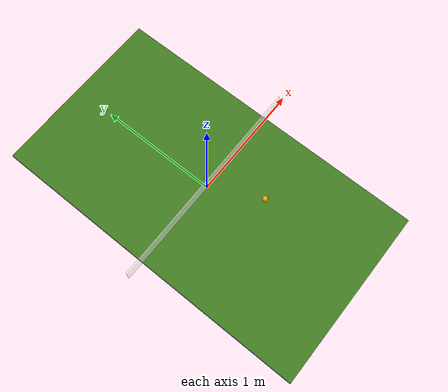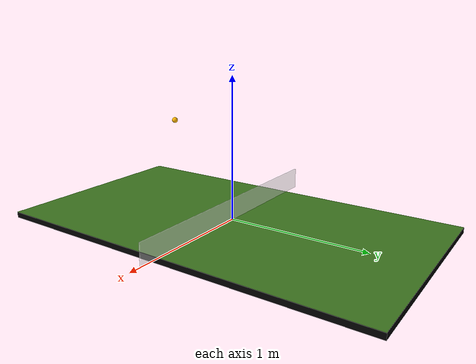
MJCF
<mujoco model="pp_ball_with_table">
  <compiler angle="radian" autolimits="true"/>
  <option density="1.225" viscosity="1.8e-5" wind="0 0 0" integrator="implicitfast" timestep="0.001" cone="elliptic"/>

  <visual>
    <headlight diffuse=".5 .5 .5" specular="1 1 1"/>
  </visual>

  <asset>
    <texture type="skybox" builtin="gradient" rgb1=".5 .5 .5" rgb2="0 0 0" width="10" height="10"/>
    <texture type="2d" name="groundplane" builtin="checker" mark="edge" rgb1="1 1 1" rgb2="1 1 1" markrgb="0 0 0" width="300" height="300"/>
    <material name="groundplane" texture="groundplane" texuniform="true" texrepeat="5 5" reflectance="0.3"/>
  </asset>

  <worldbody>
    <light pos="0 0 3" diffuse="1 1 1" specular="1 1 1"/>

    <body name="ball" pos="0.0 -0.5 0.652">
      <inertial pos="0 0 0" mass="2.7e-3" diaginertia="0.00000072 0.00000072 0.00000072"/>
      <freejoint/>
      <geom name="geom_ball" size=".02" shellinertia="false" fluidcoef="0.235 0.25 0.0 1.0 1.0" group="1" rgba="0.98 0.70 0.015 1" solref="-100000 -0" fluidshape="ellipsoid"/>
    </body>

    <body name="table" pos="0 0 -0.76" quat="0.7071068 0 0 0.7071068">
      <geom name="geom_table" size="1.37 0.7625 0.02" pos="0 0 0.74" type="box" rgba="0.27 0.51 0.14 1"/>
      <geom size="0.005 0.915 0.07625" pos="0 0 0.83625" type="box" rgba="1 1 1 0.5"/>
      <geom size="1.371 0.7635 0.02" pos="0 0 0.739" type="box" contype="0" conaffinity="0" group="1" density="0" rgba="0 0 0 1"/>
    </body>

  </worldbody>

  <contact>
      <pair geom1="geom_ball" geom2="geom_table" solref="-1000000 -17" friction="0.1 0.1 0.005 0.0001 0.0001" solimp="0.98 0.99 0.001 0.5 2" solreffriction="-0.0 -200.0"/>
  </contact>

</mujoco>
